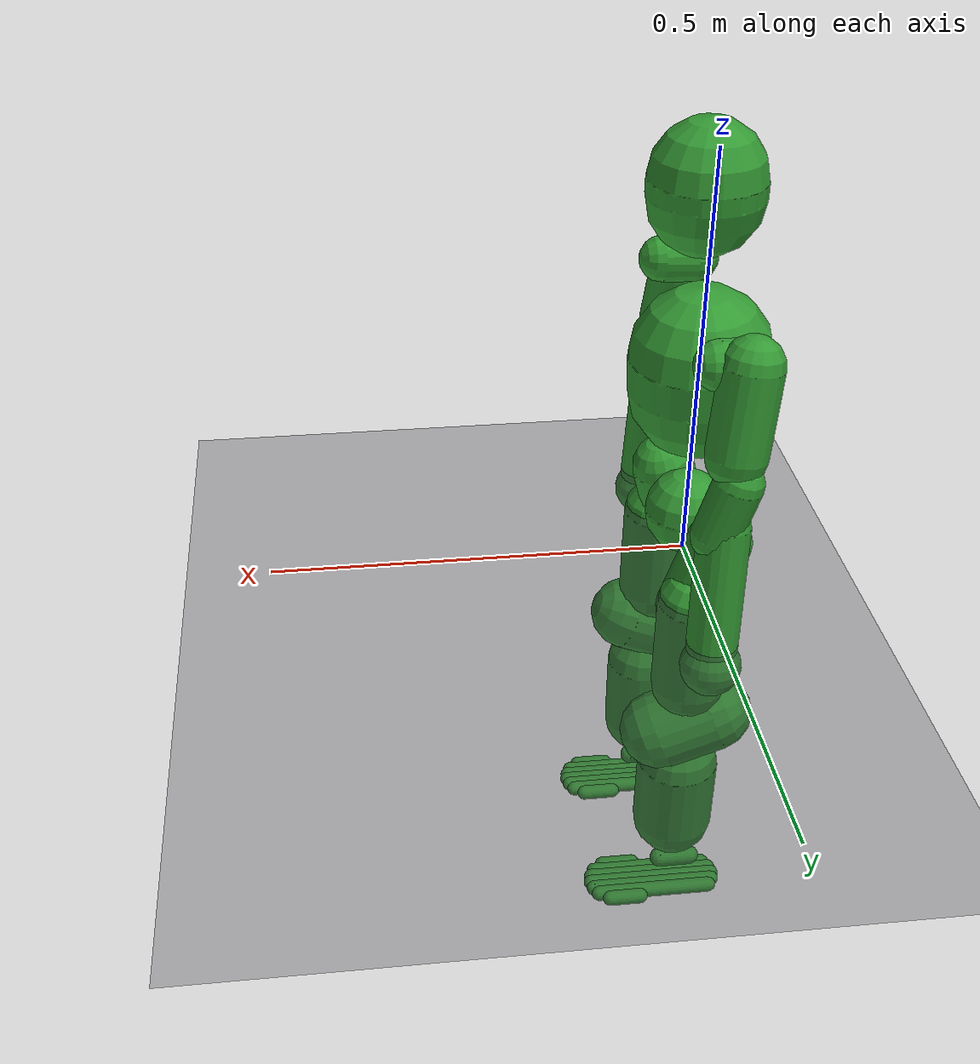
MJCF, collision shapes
<?xml version='1.0' encoding='utf-8'?>
<mujoco model="bumi_v2_0810_rl">
  <compiler angle="radian" meshdir="../meshes" />
  <asset>
    <mesh name="base_link_visual_mesh" file="base_link.STL" />
    <mesh name="waist_yaw_link_visual_mesh" file="waist_yaw_link.STL" />
    <mesh name="l_arm_pitch_link_visual_mesh" file="l_arm_pitch_link.STL" />
    <mesh name="l_arm_roll_link_visual_mesh" file="l_arm_roll_link.STL" />
    <mesh name="l_arm_yaw_link_visual_mesh" file="l_arm_yaw_link.STL" />
    <mesh name="l_elbow_pitch_link_visual_mesh" file="l_elbow_pitch_link.STL" />
    <mesh name="r_arm_pitch_link_visual_mesh" file="r_arm_pitch_link.STL" />
    <mesh name="r_arm_roll_link_visual_mesh" file="r_arm_roll_link.STL" />
    <mesh name="r_arm_yaw_link_visual_mesh" file="r_arm_yaw_link.STL" />
    <mesh name="r_elbow_pitch_link_visual_mesh" file="r_elbow_pitch_link.STL" />
    <mesh name="l_leg_pitch_link_visual_mesh" file="l_leg_pitch_link.STL" />
    <mesh name="l_leg_roll_link_visual_mesh" file="l_leg_roll_link.STL" />
    <mesh name="l_leg_yaw_link_visual_mesh" file="l_leg_yaw_link.STL" />
    <mesh name="l_knee_pitch_link_visual_mesh" file="l_knee_pitch_link.STL" />
    <mesh name="l_ankle_pitch_link_visual_mesh" file="l_ankle_pitch_link.STL" />
    <mesh name="l_ankle_roll_link_visual_mesh" file="l_ankle_roll_link.STL" />
    <mesh name="r_leg_pitch_link_visual_mesh" file="r_leg_pitch_link.STL" />
    <mesh name="r_leg_roll_link_visual_mesh" file="r_leg_roll_link.STL" />
    <mesh name="r_leg_yaw_link_visual_mesh" file="r_leg_yaw_link.STL" />
    <mesh name="r_knee_pitch_link_visual_mesh" file="r_knee_pitch_link.STL" />
    <mesh name="r_ankle_pitch_link_visual_mesh" file="r_ankle_pitch_link.STL" />
    <mesh name="r_ankle_roll_link_visual_mesh" file="r_ankle_roll_link.STL" />
  </asset>
  <worldbody>
    <geom name="ground" type="plane" size="2 2 0.1" group="0" rgba="0.18 0.18 0.20 1" contype="1" conaffinity="1" /><body name="base_link">
      <joint name="floating_base_joint" type="free" />
      <inertial pos="-0.000153 8e-06 0.048702" quat="0.707078 0.707037 -0.00806532 0.00858904" mass="2.22527" diaginertia="0.00579988 0.00544216 0.00285398" />
      <geom name="base_link_collision_capsule" size="0.05 0.002" pos="-0.000149462 2.80344e-05 0.0526868" type="capsule" rgba="0.2 0.6 0.2 0.3" group="3" contype="1" conaffinity="1" />
      <body name="waist_yaw_link" pos="0 0 0.1373">
        <inertial pos="-0.003416 0.001081 0.130331" quat="0.999611 -0.0177181 0.0196425 -0.00886409" mass="6.39671" diaginertia="0.0863753 0.0785381 0.0238714" />
        <joint name="waist_yaw_joint" pos="0 0 0" axis="0 0 1" range="-1.5707 1.5707" actuatorfrcrange="-75 75" />
        <geom name="waist_yaw_link_collision_capsule" size="0.0826585 0.0207125" pos="-0.000447303 0.000296332 0.102726" quat="0.707057 0.00839085 0.0202091 0.706818" type="capsule" rgba="0.2 0.6 0.2 0.3" group="3" contype="1" conaffinity="1" />
        <geom name="head_collision_capsule" size="0.065 0.01" pos="0.011 0 0.32" type="capsule" rgba="0.2 0.6 0.2 0.3" group="3" contype="1" conaffinity="1" />
        <body name="l_arm_pitch_link" pos="0 0.092202 0.16885" quat="0.991445 0.130526 0 0">
          <inertial pos="0.000208 0.047998 0.000105" quat="0.476949 0.506057 -0.503027 0.513215" mass="0.511827" diaginertia="0.000365381 0.000312242 0.000269997" />
          <joint name="l_arm_pitch_joint" pos="0 0 0" axis="0 1 0" range="-3.1415 1.5707" actuatorfrcrange="-27 27" />
          <body name="l_arm_roll_link" pos="0 0.05466 0" quat="0.991445 -0.130526 0 0">
            <inertial pos="0.001084 0.019731 -0.065369" quat="0.727423 0.102954 -0.0108183 0.678336" mass="0.65356" diaginertia="0.00095249 0.000864752 0.000403592" />
            <joint name="l_arm_roll_joint" pos="0 0 0" axis="1 0 0" range="-0.0872 2.1816" actuatorfrcrange="-27 27" />
            <geom name="l_arm_roll_link_collision_capsule" size="0.0340139 0.05" pos="-0.00547846 0.0160568 -0.0445279" quat="0.707106 0.00095731 -0.0715453 0.703478" type="capsule" rgba="0.2 0.6 0.2 0.3" group="3" contype="1" conaffinity="1" />
            <body name="l_arm_yaw_link" pos="0 0.023405 -0.095423" quat="0.999048 0.0436192 0 0">
              <inertial pos="0.007017 0.00122 -0.069352" quat="0.992042 0.0141683 -0.123311 0.0211257" mass="0.479169" diaginertia="0.000373952 0.000342458 0.000223659" />
              <joint name="l_arm_yaw_joint" pos="0 0 0" axis="0 0 1" range="-1.5707 1.5707" actuatorfrcrange="-27 27" />
              <body name="l_elbow_pitch_link" pos="0.010001 0 -0.077899">
                <inertial pos="-0.000352 0.000739 -0.097148" quat="0.999274 0.00646669 -0.0110857 0.0358593" mass="0.488259" diaginertia="0.00207754 0.00199554 0.000310215" />
                <joint name="l_elbow_pitch_joint" pos="0 0 0" axis="0 1 0" range="-2.2689 0" actuatorfrcrange="-27 27" />
                <geom name="l_elbow_pitch_link_collision_capsule" size="0.0291767 0.0769893" pos="-0.00236432 -0.00280334 -0.0802681" quat="0.707099 -0.00334142 -0.0174818 0.706891" type="capsule" rgba="0.2 0.6 0.2 0.3" group="3" contype="1" conaffinity="1" />
                <geom name="l_elbow_pitch_link_visual" type="mesh" mesh="l_elbow_pitch_link_visual_mesh" group="2" contype="0" conaffinity="0" density="0" rgba="1 1 1 1" pos="0 0 0" euler="0 0 0" />
                <geom name="l_hand_collision_sphere" type="sphere" size="0.035" group="3" contype="1" conaffinity="1" rgba="0.2 0.6 0.2 0.3" pos="0 0 -0.18" />
              </body>
              <geom name="l_arm_yaw_link_visual" type="mesh" mesh="l_arm_yaw_link_visual_mesh" group="2" contype="0" conaffinity="0" density="0" rgba="1 1 1 1" pos="0 0 0" euler="0 0 0" />
              <geom name="l_arm_yaw_link_collision_capsule" type="capsule" size="0.0277638011 0.035" group="3" contype="1" conaffinity="1" rgba="0.2 0.6 0.2 0.3" pos="0.00538630132 -6.38901881e-05 -0.0603787124" euler="-0.17134908 -0.254553819 1.57079633" />
            </body>
            <geom name="l_arm_roll_link_visual" type="mesh" mesh="l_arm_roll_link_visual_mesh" group="2" contype="0" conaffinity="0" density="0" rgba="1 1 1 1" pos="0 0 0" euler="0 0 0" />
          </body>
          <geom name="l_arm_pitch_link_visual" type="mesh" mesh="l_arm_pitch_link_visual_mesh" group="2" contype="0" conaffinity="0" density="0" rgba="1 1 1 1" pos="0 0 0" euler="0 0 0" />
          <geom name="l_arm_pitch_link_collision_capsule" type="capsule" size="0.0277391904 0.02" group="3" contype="1" conaffinity="1" rgba="0.2 0.6 0.2 0.3" pos="-0.00111744421 0.0467911399 0.000171160794" euler="3.06223997 -1.54835599 0" />
        </body>
        <body name="r_arm_pitch_link" pos="0 -0.092202 0.16885" quat="0.991444 -0.130536 0 0">
          <inertial pos="0.000208 -0.047997 0.000106" quat="0.506023 0.476934 -0.513281 0.503008" mass="0.511848" diaginertia="0.000365402 0.000312261 0.000270015" />
          <joint name="r_arm_pitch_joint" pos="0 0 0" axis="0 1 0" range="-3.1415 1.5707" actuatorfrcrange="-27 27" />
          <body name="r_arm_roll_link" pos="0 -0.05466 0" quat="0.991444 0.130536 0 0">
            <inertial pos="0.001084 -0.019728 -0.065365" quat="0.678337 -0.0108816 0.10298 0.727417" mass="0.65362" diaginertia="0.000952722 0.00086488 0.000403693" />
            <joint name="r_arm_roll_joint" pos="0 0 0" axis="1 0 0" range="-2.1816 0.0872" actuatorfrcrange="-27 27" />
            <geom name="r_arm_roll_link_collision_capsule" size="0.0340094 0.05" pos="-0.00545274 -0.0160147 -0.0444566" quat="0.703526 -0.0710748 0.000484363 0.707107" type="capsule" rgba="0.2 0.6 0.2 0.3" group="3" contype="1" conaffinity="1" />
            <body name="r_arm_yaw_link" pos="0 -0.0234057 -0.0954232" quat="0.999048 -0.0436194 0 0">
              <inertial pos="0.007017 -0.001221 -0.069351" quat="0.992041 -0.0141944 -0.123312 -0.0211673" mass="0.479164" diaginertia="0.00037395 0.000342458 0.000223661" />
              <joint name="r_arm_yaw_joint" pos="0 0 0" axis="0 0 1" range="-1.5707 1.5707" actuatorfrcrange="-27 27" />
              <body name="r_elbow_pitch_link" pos="0.0100011 0 -0.0778985">
                <inertial pos="-0.000353 -0.000738 -0.097148" quat="0.999272 -0.00647286 -0.0110973 -0.0359186" mass="0.488246" diaginertia="0.00207745 0.00199544 0.000310207" />
                <joint name="r_elbow_pitch_joint" pos="0 0 0" axis="0 1 0" range="-2.2689 0" actuatorfrcrange="-27 27" />
                <geom name="r_elbow_pitch_link_collision_capsule" size="0.0292324 0.0769606" pos="-0.00234341 -0.00286343 -0.0802382" quat="0.707097 -0.00366001 -0.0178003 0.706883" type="capsule" rgba="0.2 0.6 0.2 0.3" group="3" contype="1" conaffinity="1" />
                <geom name="r_elbow_pitch_link_visual" type="mesh" mesh="r_elbow_pitch_link_visual_mesh" group="2" contype="0" conaffinity="0" density="0" rgba="0.698039215686274 0.698039215686274 0.698039215686274 1" pos="0 0 0" euler="0 0 0" />
                <geom name="r_hand_collision_sphere" type="sphere" size="0.035" group="3" contype="1" conaffinity="1" rgba="0.2 0.6 0.2 0.3" pos="0 0 -0.18" />
              </body>
              <geom name="r_arm_yaw_link_visual" type="mesh" mesh="r_arm_yaw_link_visual_mesh" group="2" contype="0" conaffinity="0" density="0" rgba="0.698039215686274 0.698039215686274 0.698039215686274 1" pos="0 0 0" euler="0 0 0" />
              <geom name="r_arm_yaw_link_collision_capsule" type="capsule" size="0.0278550232 0.035" group="3" contype="1" conaffinity="1" rgba="0.2 0.6 0.2 0.3" pos="0.00535845303 4.40347545e-06 -0.0603619012" euler="-0.170629823 0.259171179 1.57079633" />
            </body>
            <geom name="r_arm_roll_link_visual" type="mesh" mesh="r_arm_roll_link_visual_mesh" group="2" contype="0" conaffinity="0" density="0" rgba="0.698039215686274 0.698039215686274 0.698039215686274 1" pos="0 0 0" euler="0 0 0" />
          </body>
          <geom name="r_arm_pitch_link_visual" type="mesh" mesh="r_arm_pitch_link_visual_mesh" group="2" contype="0" conaffinity="0" density="0" rgba="0.698039215686274 0.698039215686274 0.698039215686274 1" pos="0 0 0" euler="0 0 0" />
          <geom name="r_arm_pitch_link_collision_capsule" type="capsule" size="0.027649121 0.02" group="3" contype="1" conaffinity="1" rgba="0.2 0.6 0.2 0.3" pos="-0.00126320077 -0.0466551292 0.000202283775" euler="-3.08431811 -1.54593007 0" />
        </body>
        <geom name="waist_yaw_link_visual" type="mesh" mesh="waist_yaw_link_visual_mesh" group="2" contype="0" conaffinity="0" density="0" rgba="0.698039215686274 0.698039215686274 0.698039215686274 1" pos="0 0 0" euler="0 0 0" />
      </body>
      <body name="l_leg_pitch_link" pos="0 0.063 0.0438">
        <inertial pos="0.003632 0.031551 -0.044997" quat="0.686214 0.0779635 -0.139829 0.709563" mass="0.963512" diaginertia="0.00157948 0.0014148 0.000765462" />
        <joint name="l_leg_pitch_joint" pos="0 0 0" axis="0 1 0" range="-2.0943 2.0943" actuatorfrcrange="-75 75" />
        <body name="l_leg_roll_link" pos="0 0.037 -0.06">
          <inertial pos="0.000679 1e-05 -0.060363" quat="0.704027 -0.0468142 -0.0294129 0.708018" mass="0.913856" diaginertia="0.00189192 0.00158161 0.0010975" />
          <joint name="l_leg_roll_joint" pos="0 0 0" axis="1 0 0" range="-0.6108 1.4835" actuatorfrcrange="-75 75" />
          <geom name="l_leg_roll_link_collision_capsule" size="0.045 0.06" pos="0.00633064 -9.66653e-05 -0.055" quat="0.707107 0.00026376 -0.00026376 0.707107" type="capsule" rgba="0.2 0.6 0.2 0.3" group="3" contype="1" conaffinity="1" />
          <body name="l_leg_yaw_link" pos="0 0 -0.102">
            <inertial pos="0.01177 -0.003653 -0.052489" quat="0.542439 0.835458 0.0427906 -0.0770606" mass="0.329497" diaginertia="0.000612995 0.000470346 0.000393041" />
            <joint name="l_leg_yaw_joint" pos="0 0 0" axis="0 0 1" range="-2.3561 2.3561" actuatorfrcrange="-27 27" />
            <body name="l_knee_pitch_link" pos="0 0 -0.087998">
              <inertial pos="0.005787 -0.000936 -0.075635" quat="0.687583 -0.0120512 -0.0241072 0.725606" mass="2.22772" diaginertia="0.0115202 0.011381 0.00202015" />
              <joint name="l_knee_pitch_joint" pos="0 0 0" axis="0 1 0" range="0 2.2689" actuatorfrcrange="-75 75" />
              <geom name="l_knee_pitch_link_collision_capsule" size="0.05 0.05" pos="0.00949147 -0.000653414 -0.0999969" quat="0.707058 -0.00827449 0.0133109 0.706981" type="capsule" rgba="0.2 0.6 0.2 0.3" group="3" contype="1" conaffinity="1" />
              <body name="l_ankle_pitch_link" pos="0 0 -0.22494">
                <inertial pos="-0.000733 0.001103 0" quat="0.497328 0.497252 0.502681 0.50271" mass="0.071403" diaginertia="1.21487e-05 1.04257e-05 6.80638e-06" />
                <joint name="l_ankle_pitch_joint" pos="0 0 0" axis="0 1 0" range="-0.5934 0.6108" actuatorfrcrange="-32.4 32.4" />
                <body name="l_ankle_roll_link">
                  <inertial pos="0.02516 -4e-06 -0.026299" quat="3.49157e-05 0.718582 -1.0054e-05 0.695442" mass="0.615519" diaginertia="0.00170501 0.00149412 0.000501129" />
                  <joint name="l_ankle_roll_joint" pos="0 0 0" axis="1 0 0" range="-0.2617 0.2617" actuatorfrcrange="-32.4 32.4" />
                  <geom name="l_ankle_roll_link_visual" type="mesh" mesh="l_ankle_roll_link_visual_mesh" group="2" contype="0" conaffinity="0" density="0" rgba="1 1 1 1" pos="0 0 0" euler="0 0 0" />
                  <geom name="l_foot1_collision" type="capsule" size="0.01" group="3" contype="1" conaffinity="1" rgba="0.2 0.6 0.2 0.3" fromto="0.09 -0.03 -0.039 0.05 -0.03 -0.039" />
                  <geom name="l_foot2_collision" type="capsule" size="0.01" group="3" contype="1" conaffinity="1" rgba="0.2 0.6 0.2 0.3" fromto="-0.044 -0.02 -0.039 0.103 -0.02 -0.039" />
                  <geom name="l_foot3_collision" type="capsule" size="0.01" group="3" contype="1" conaffinity="1" rgba="0.2 0.6 0.2 0.3" fromto="-0.05 -0.01 -0.039 0.108 -0.01 -0.039" />
                  <geom name="l_foot4_collision" type="capsule" size="0.01" group="3" contype="1" conaffinity="1" rgba="0.2 0.6 0.2 0.3" fromto="-0.052 0 -0.039 0.11 0 -0.039" />
                  <geom name="l_foot5_collision" type="capsule" size="0.01" group="3" contype="1" conaffinity="1" rgba="0.2 0.6 0.2 0.3" fromto="-0.05 0.01 -0.039 0.108 0.01 -0.039" />
                  <geom name="l_foot6_collision" type="capsule" size="0.01" group="3" contype="1" conaffinity="1" rgba="0.2 0.6 0.2 0.3" fromto="-0.044 0.02 -0.039 0.103 0.02 -0.039" />
                  <geom name="l_foot7_collision" type="capsule" size="0.01" group="3" contype="1" conaffinity="1" rgba="0.2 0.6 0.2 0.3" fromto="0.09 0.03 -0.039 0.05 0.03 -0.039" />
                </body>
                <geom name="l_ankle_pitch_link_visual" type="mesh" mesh="l_ankle_pitch_link_visual_mesh" group="2" contype="0" conaffinity="0" density="0" rgba="1 1 1 1" pos="0 0 0" euler="0 0 0" />
                <geom name="l_ankle_pitch_link_collision_capsule" type="capsule" size="0.0122310637 0.02" group="3" contype="1" conaffinity="1" rgba="0.2 0.6 0.2 0.3" pos="0.000876797072 0.00131606489 8.95773685e-06" euler="0.053645648 -1.56479929 3.14159265" />
              </body>
              <geom name="l_knee_pitch_link_visual" type="mesh" mesh="l_knee_pitch_link_visual_mesh" group="2" contype="0" conaffinity="0" density="0" rgba="1 1 1 1" pos="0 0 0" euler="0 0 0" />
            </body>
            <geom name="l_leg_yaw_link_visual" type="mesh" mesh="l_leg_yaw_link_visual_mesh" group="2" contype="0" conaffinity="0" density="0" rgba="1 1 1 1" pos="0 0 0" euler="0 0 0" />
            <geom name="l_leg_yaw_link_collision_capsule" type="capsule" size="0.0482146989 0.035" group="3" contype="1" conaffinity="1" rgba="0.2 0.6 0.2 0.3" pos="0.00571738197 0.00396558616 -0.0718354392" euler="3.04667156 1.18478733 -1.57079633" />
          </body>
          <geom name="l_leg_roll_link_visual" type="mesh" mesh="l_leg_roll_link_visual_mesh" group="2" contype="0" conaffinity="0" density="0" rgba="1 1 1 1" pos="0 0 0" euler="0 0 0" />
        </body>
        <geom name="l_leg_pitch_link_visual" type="mesh" mesh="l_leg_pitch_link_visual_mesh" group="2" contype="0" conaffinity="0" density="0" rgba="1 1 1 1" pos="0 0 0" euler="0 0 0" />
        <geom name="l_leg_pitch_link_collision_capsule" type="capsule" size="0.0384338921 0.05" group="3" contype="1" conaffinity="1" rgba="0.2 0.6 0.2 0.3" pos="-0.0022352039 0.0249036321 -0.0244523066" euler="-0.0966076329 -0.270580267 1.57079633" />
      </body>
      <body name="r_leg_pitch_link" pos="0 -0.063 0.0438">
        <inertial pos="0.003632 -0.031551 -0.044997" quat="0.709553 -0.139832 0.077964 0.686224" mass="0.96351" diaginertia="0.00157948 0.0014148 0.000765461" />
        <joint name="r_leg_pitch_joint" pos="0 0 0" axis="0 1 0" range="-2.0943 2.0943" actuatorfrcrange="-75 75" />
        <body name="r_leg_roll_link" pos="0 -0.037 -0.06">
          <inertial pos="0.000678 -1e-05 -0.060361" quat="0.708 -0.0294792 -0.0468625 0.704039" mass="0.91389" diaginertia="0.00189214 0.00158177 0.0010976" />
          <joint name="r_leg_roll_joint" pos="0 0 0" axis="1 0 0" range="-1.4835 0.6108" actuatorfrcrange="-75 75" />
          <geom name="r_leg_roll_link_collision_capsule" size="0.045 0.06" pos="0.00640817 -2.70168e-05 -0.055" quat="0.707106 -0.00063615 0.00063615 0.707106" type="capsule" rgba="0.2 0.6 0.2 0.3" group="3" contype="1" conaffinity="1" />
          <body name="r_leg_yaw_link" pos="0 0 -0.102">
            <inertial pos="0.011766 0.003698 -0.05249" quat="0.835939 0.541691 0.0771922 -0.0426418" mass="0.329421" diaginertia="0.000612815 0.000470234 0.000392862" />
            <joint name="r_leg_yaw_joint" pos="0 0 0" axis="0 0 1" range="-2.3561 2.3561" actuatorfrcrange="-27 27" />
            <body name="r_knee_pitch_link" pos="0 0 -0.087998">
              <inertial pos="0.005787 0.000936 -0.075636" quat="0.725699 -0.0241044 -0.0120484 0.687484" mass="2.22767" diaginertia="0.0115198 0.0113807 0.00202011" />
              <joint name="r_knee_pitch_joint" pos="0 0 0" axis="0 1 0" range="0 2.2689" actuatorfrcrange="-75 75" />
              <geom name="r_knee_pitch_link_collision_capsule" size="0.05 0.05" pos="0.00977739 0.000616862 -0.100311" quat="0.707044 0.00945122 -0.0065481 0.707076" type="capsule" rgba="0.2 0.6 0.2 0.3" group="3" contype="1" conaffinity="1" />
              <body name="r_ankle_pitch_link" pos="0 0 -0.22494">
                <inertial pos="-0.000733 -0.001103 0" quat="0.50271 0.50268 0.497254 0.497326" mass="0.071403" diaginertia="1.21487e-05 1.04257e-05 6.80638e-06" />
                <joint name="r_ankle_pitch_joint" pos="0 0 0" axis="0 1 0" range="-0.5934 0.6108" actuatorfrcrange="-32.4 32.4" />
                <body name="r_ankle_roll_link">
                  <inertial pos="0.025161 3e-06 -0.026301" quat="2.55919e-05 0.718587 1.59695e-05 0.695437" mass="0.615435" diaginertia="0.00170488 0.00149399 0.000501046" />
                  <joint name="r_ankle_roll_joint" pos="0 0 0" axis="1 0 0" range="-0.2617 0.2617" actuatorfrcrange="-32.4 32.4" />
                  <geom name="r_ankle_roll_link_visual" type="mesh" mesh="r_ankle_roll_link_visual_mesh" group="2" contype="0" conaffinity="0" density="0" rgba="0.898039215686275 0.917647058823529 0.929411764705882 1" pos="0 0 0" euler="0 0 0" />
                  <geom name="r_foot1_collision" type="capsule" size="0.01" group="3" contype="1" conaffinity="1" rgba="0.2 0.6 0.2 0.3" fromto="0.09 -0.03 -0.039 0.05 -0.03 -0.039" />
                  <geom name="r_foot2_collision" type="capsule" size="0.01" group="3" contype="1" conaffinity="1" rgba="0.2 0.6 0.2 0.3" fromto="-0.044 -0.02 -0.039 0.103 -0.02 -0.039" />
                  <geom name="r_foot3_collision" type="capsule" size="0.01" group="3" contype="1" conaffinity="1" rgba="0.2 0.6 0.2 0.3" fromto="-0.05 -0.01 -0.039 0.108 -0.01 -0.039" />
                  <geom name="r_foot4_collision" type="capsule" size="0.01" group="3" contype="1" conaffinity="1" rgba="0.2 0.6 0.2 0.3" fromto="-0.052 0 -0.039 0.11 0 -0.039" />
                  <geom name="r_foot5_collision" type="capsule" size="0.01" group="3" contype="1" conaffinity="1" rgba="0.2 0.6 0.2 0.3" fromto="-0.05 0.01 -0.039 0.108 0.01 -0.039" />
                  <geom name="r_foot6_collision" type="capsule" size="0.01" group="3" contype="1" conaffinity="1" rgba="0.2 0.6 0.2 0.3" fromto="-0.044 0.02 -0.039 0.103 0.02 -0.039" />
                  <geom name="r_foot7_collision" type="capsule" size="0.01" group="3" contype="1" conaffinity="1" rgba="0.2 0.6 0.2 0.3" fromto="0.09 0.03 -0.039 0.05 0.03 -0.039" />
                </body>
                <geom name="r_ankle_pitch_link_visual" type="mesh" mesh="r_ankle_pitch_link_visual_mesh" group="2" contype="0" conaffinity="0" density="0" rgba="0.898039215686275 0.917647058823529 0.929411764705882 1" pos="0 0 0" euler="0 0 0" />
                <geom name="r_ankle_pitch_link_collision_capsule" type="capsule" size="0.0122303001 0.02" group="3" contype="1" conaffinity="1" rgba="0.2 0.6 0.2 0.3" pos="0.000870232132 -0.00131939751 7.9190578e-06" euler="-0.056251844 -1.56539963 3.14159265" />
              </body>
              <geom name="r_knee_pitch_link_visual" type="mesh" mesh="r_knee_pitch_link_visual_mesh" group="2" contype="0" conaffinity="0" density="0" rgba="0.698039215686274 0.698039215686274 0.698039215686274 1" pos="0 0 0" euler="0 0 0" />
            </body>
            <geom name="r_leg_yaw_link_visual" type="mesh" mesh="r_leg_yaw_link_visual_mesh" group="2" contype="0" conaffinity="0" density="0" rgba="0.698039215686274 0.698039215686274 0.698039215686274 1" pos="0 0 0" euler="0 0 0" />
            <geom name="r_leg_yaw_link_collision_capsule" type="capsule" size="0.0481151834 0.035" group="3" contype="1" conaffinity="1" rgba="0.2 0.6 0.2 0.3" pos="0.0056763031 -0.00395306804 -0.0717224234" euler="0.0946717835 1.19245119 1.57079633" />
          </body>
          <geom name="r_leg_roll_link_visual" type="mesh" mesh="r_leg_roll_link_visual_mesh" group="2" contype="0" conaffinity="0" density="0" rgba="0.698039215686274 0.698039215686274 0.698039215686274 1" pos="0 0 0" euler="0 0 0" />
        </body>
        <geom name="r_leg_pitch_link_visual" type="mesh" mesh="r_leg_pitch_link_visual_mesh" group="2" contype="0" conaffinity="0" density="0" rgba="0.698039215686274 0.698039215686274 0.698039215686274 1" pos="0 0 0" euler="0 0 0" />
        <geom name="r_leg_pitch_link_collision_capsule" type="capsule" size="0.0385477055 0.05" group="3" contype="1" conaffinity="1" rgba="0.2 0.6 0.2 0.3" pos="-0.00222982706 -0.0248671487 -0.0244900357" euler="-0.10078084 0.272947287 1.57079633" />
      </body>
      <body name="base_imu">
        <inertial pos="0 0 0" mass="0.01" diaginertia="1e-06 1e-06 1e-06" />
      </body>
      <geom name="base_link_visual" type="mesh" mesh="base_link_visual_mesh" group="2" contype="0" conaffinity="0" density="0" rgba="0.698039215686274 0.698039215686274 0.698039215686274 1" pos="0 0 0" euler="0 0 0" />
    </body>
  </worldbody>
</mujoco>
